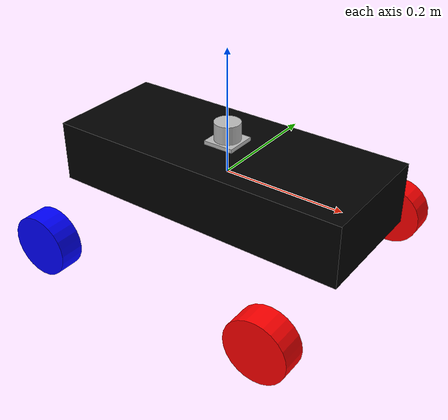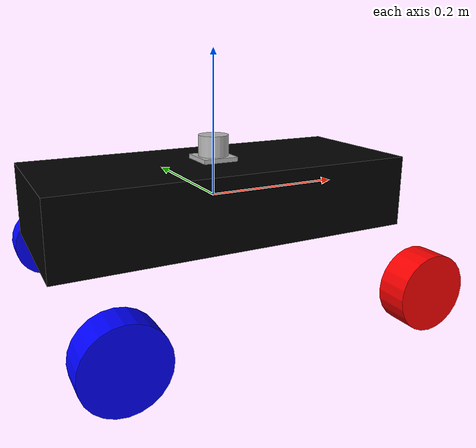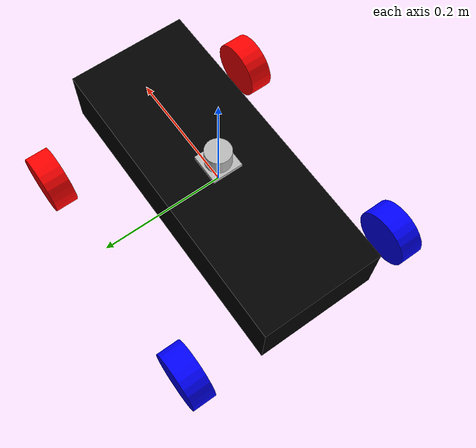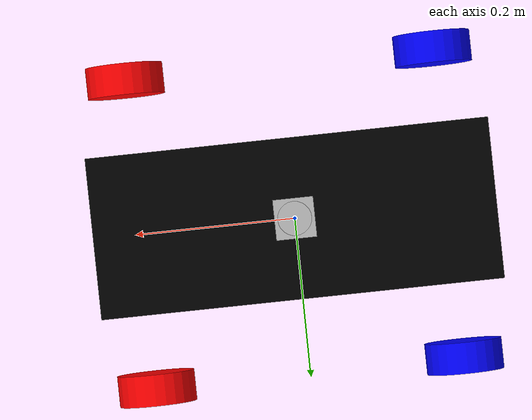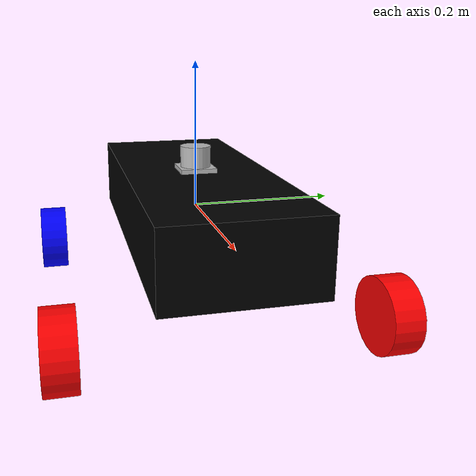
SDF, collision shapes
<?xml version="1.0"?>
<sdf version="1.6">
  <model name="mycar">
    <include>
      <pose>0 0 0.05 0 0 0</pose>
      <uri>model://hokuyo_gpu</uri>
    </include>
    <joint name="hokuyo_joint" type="fixed">
      <parent>chasis</parent>
      <child>hokuyo_gpu::link</child>
    </joint>
    <link name="chasis">
      <inertial>
        <mass>1.0</mass>
        <inertia>
          <!-- inertias are tricky to compute -->
          <!-- http://gazebosim.org/tutorials?tut=inertia&cat=build_robot -->
          <ixx>0.1</ixx>
          <!-- for a box: ixx = 0.083 * mass * (y*y + z*z) -->
          <ixy>0</ixy>
          <!-- for a box: ixy = 0 -->
          <ixz>0</ixz>
          <!-- for a box: ixz = 0 -->
          <iyy>0.1</iyy>
          <!-- for a box: iyy = 0.083 * mass * (x*x + z*z) -->
          <iyz>0</iyz>
          <!-- for a box: iyz = 0 -->
          <izz>0.1</izz>
          <!-- for a box: izz = 0.083 * mass * (x*x + y*y) -->
        </inertia>
      </inertial>
      <collision name="collision">
        <geometry>
          <box>
            <size>0.5 0.2 0.1</size>
          </box>
        </geometry>
      </collision>
      <visual name="visual">
        <material>
          <ambient>0 0 0</ambient>
        </material>
        <geometry>
          <box>
            <size>0.5 0.2 0.1</size>
          </box>
        </geometry>
      </visual>
    </link>
    <link name="front_left_wheel">
      <pose>0.2 0.2 -0.1 1.57 0 0</pose>
      <inertial>
        <mass>0.1</mass>
        <inertia>
          <!-- inertias are tricky to compute -->
          <!-- http://gazebosim.org/tutorials?tut=inertia&cat=build_robot -->
          <ixx>0.01</ixx>
          <!-- for a box: ixx = 0.083 * mass * (y*y + z*z) -->
          <ixy>0</ixy>
          <!-- for a box: ixy = 0 -->
          <ixz>0</ixz>
          <!-- for a box: ixz = 0 -->
          <iyy>0.01</iyy>
          <!-- for a box: iyy = 0.083 * mass * (x*x + z*z) -->
          <iyz>0</iyz>
          <!-- for a box: iyz = 0 -->
          <izz>0.1</izz>
          <!-- for a box: izz = 0.083 * mass * (x*x + y*y) -->
        </inertia>
      </inertial>
      <collision name="collision">
        <geometry>
          <cylinder>
            <radius>0.05</radius>
            <length>0.04</length>
          </cylinder>
        </geometry>
      </collision>
      <visual name="visual">
        <material>
          <ambient>1 0 0</ambient>
        </material>
        <geometry>
          <cylinder>
            <radius>0.05</radius>
            <length>0.04</length>
          </cylinder>
        </geometry>
      </visual>
    </link>
    <joint name="front_left_axle" type="revolute2">
      <parent>chasis</parent>
      <child>front_left_wheel</child>
      <axis>
        <limit>
          <lower>-0.2</lower>
          <upper>0.2</upper>
        </limit>
        <xyz>0 0 1</xyz>
      </axis>
      <axis2>
        <xyz>0 1 0</xyz>
      </axis2>
    </joint>
    <link name="front_right_wheel">
      <pose>0.2 -0.2 -0.1 1.57 0 0</pose>
      <inertial>
        <mass>0.1</mass>
        <inertia>
          <!-- inertias are tricky to compute -->
          <!-- http://gazebosim.org/tutorials?tut=inertia&cat=build_robot -->
          <ixx>0.01</ixx>
          <!-- for a box: ixx = 0.083 * mass * (y*y + z*z) -->
          <ixy>0</ixy>
          <!-- for a box: ixy = 0 -->
          <ixz>0</ixz>
          <!-- for a box: ixz = 0 -->
          <iyy>0.01</iyy>
          <!-- for a box: iyy = 0.083 * mass * (x*x + z*z) -->
          <iyz>0</iyz>
          <!-- for a box: iyz = 0 -->
          <izz>0.1</izz>
          <!-- for a box: izz = 0.083 * mass * (x*x + y*y) -->
        </inertia>
      </inertial>
      <collision name="collision">
        <geometry>
          <cylinder>
            <radius>0.05</radius>
            <length>0.04</length>
          </cylinder>
        </geometry>
      </collision>
      <visual name="visual">
        <material>
          <ambient>1 0 0</ambient>
        </material>
        <geometry>
          <cylinder>
            <radius>0.05</radius>
            <length>0.04</length>
          </cylinder>
        </geometry>
      </visual>
    </link>
    <joint name="front_right_axle" type="revolute2">
      <parent>chasis</parent>
      <child>front_right_wheel</child>
      <axis>
        <limit>
          <lower>-0.2</lower>
          <upper>0.2</upper>
        </limit>
        <xyz>0 0 1</xyz>
      </axis>
      <axis2>
        <xyz>0 1 0</xyz>
      </axis2>
    </joint>
    <link name="rear_left_wheel">
      <pose>-0.2 0.2 -0.1 1.57 0 0</pose>
      <inertial>
        <mass>0.1</mass>
        <inertia>
          <!-- inertias are tricky to compute -->
          <!-- http://gazebosim.org/tutorials?tut=inertia&cat=build_robot -->
          <ixx>0.01</ixx>
          <!-- for a box: ixx = 0.083 * mass * (y*y + z*z) -->
          <ixy>0</ixy>
          <!-- for a box: ixy = 0 -->
          <ixz>0</ixz>
          <!-- for a box: ixz = 0 -->
          <iyy>0.01</iyy>
          <!-- for a box: iyy = 0.083 * mass * (x*x + z*z) -->
          <iyz>0</iyz>
          <!-- for a box: iyz = 0 -->
          <izz>0.1</izz>
          <!-- for a box: izz = 0.083 * mass * (x*x + y*y) -->
        </inertia>
      </inertial>
      <collision name="collision">
        <geometry>
          <cylinder>
            <radius>0.05</radius>
            <length>0.04</length>
          </cylinder>
        </geometry>
      </collision>
      <visual name="visual">
        <material>
          <ambient>0 0 1</ambient>
        </material>
        <geometry>
          <cylinder>
            <radius>0.05</radius>
            <length>0.04</length>
          </cylinder>
        </geometry>
      </visual>
    </link>
    <joint name="rear_left_axle" type="revolute">
      <parent>chasis</parent>
      <child>rear_left_wheel</child>
      <axis>
        <xyz>0 0 1</xyz>
      </axis>
    </joint>
    <link name="rear_right_wheel">
      <pose>-0.2 -0.2 -0.1 1.57 0 0</pose>
      <inertial>
        <mass>0.1</mass>
        <inertia>
          <!-- inertias are tricky to compute -->
          <!-- http://gazebosim.org/tutorials?tut=inertia&cat=build_robot -->
          <ixx>0.01</ixx>
          <!-- for a box: ixx = 0.083 * mass * (y*y + z*z) -->
          <ixy>0</ixy>
          <!-- for a box: ixy = 0 -->
          <ixz>0</ixz>
          <!-- for a box: ixz = 0 -->
          <iyy>0.01</iyy>
          <!-- for a box: iyy = 0.083 * mass * (x*x + z*z) -->
          <iyz>0</iyz>
          <!-- for a box: iyz = 0 -->
          <izz>0.1</izz>
          <!-- for a box: izz = 0.083 * mass * (x*x + y*y) -->
        </inertia>
      </inertial>
      <collision name="collision">
        <geometry>
          <cylinder>
            <radius>0.05</radius>
            <length>0.04</length>
          </cylinder>
        </geometry>
      </collision>
      <visual name="visual">
        <material>
          <ambient>0 0 1</ambient>
        </material>
        <geometry>
          <cylinder>
            <radius>0.05</radius>
            <length>0.04</length>
          </cylinder>
        </geometry>
      </visual>
    </link>
    <joint name="rear_right_axle" type="revolute">
      <parent>chasis</parent>
      <child>rear_right_wheel</child>
      <axis>
        <xyz>0 0 1</xyz>
      </axis>
    </joint>
    <plugin name="p3d" filename="libgazebo_ros_p3d.so">
      <bodyName>chasis</bodyName>
      <topicName>mycar/ground_truth</topicName>
      <frameName>world</frameName>
      <updateRate>100</updateRate>
    </plugin>
    <plugin name="force_front_left" filename="libgazebo_ros_force.so">
      <alwaysOn>true</alwaysOn>
      <update>100</update>
      <updateRate>100.0</updateRate>
      <bodyName>front_left_wheel</bodyName>
      <topicName>mycar/force_front_left</topicName>
    </plugin>

    <plugin name="force_front_right" filename="libgazebo_ros_force.so">
      <alwaysOn>true</alwaysOn>
      <update>100</update>
      <updateRate>100.0</updateRate>
      <bodyName>front_right_wheel</bodyName>
      <topicName>mycar/force_front_right</topicName>
    </plugin>

    <plugin name="force_rear_left" filename="libgazebo_ros_force.so">
      <alwaysOn>true</alwaysOn>
      <update>100</update>
      <updateRate>100.0</updateRate>
      <bodyName>rear_left_wheel</bodyName>
      <topicName>mycar/force_rear_left</topicName>
    </plugin>

    <plugin name="force_rear_right" filename="libgazebo_ros_force.so">
      <alwaysOn>true</alwaysOn>
      <update>100</update>
      <updateRate>100.0</updateRate>
      <bodyName>front_right_wheel</bodyName>
      <topicName>mycar/force_rear_right</topicName>
    </plugin>

  </model>
</sdf>
<!-- vim: set et ft=xml fenc=utf-8 ff=unix sts=0 sw=2 ts=2 : -->

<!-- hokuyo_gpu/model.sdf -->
<sdf version="1.5">
  <model name="hokuyo_gpu">
    <pose>0 0 0.035 0 0 0</pose>
    <link name="link">
      <inertial>
        <mass>0.1</mass>
      </inertial>
      <visual name="visual">
        <geometry>
          <mesh>
            <uri>model://hokuyo_gpu/meshes/hokuyo.dae</uri>
          </mesh>
        </geometry>
      </visual>
      <collision name="collision-base">
        <pose>0 0 -0.0145 0 0 0</pose>
        <geometry>
          <box>
            <size>0.05 0.05 0.041</size>
          </box>
        </geometry>
      </collision>
      <collision name="collision-top">
        <pose>0 0 0.0205 0 0 0</pose>
        <geometry>
          <cylinder>
            <radius>0.021</radius>
            <length>0.029</length>
          </cylinder>
        </geometry>
      </collision>
      <sensor name="laser" type="gpu_ray">
        <pose>0.01 0 0.0175 0 -0 0</pose>
        <ray>
          <scan>
            <horizontal>
              <samples>640</samples>
              <resolution>1</resolution>
              <min_angle>-2.26889</min_angle>
              <max_angle>2.268899</max_angle>
            </horizontal>
          </scan>
          <range>
            <min>0.08</min>
            <max>10</max>
            <resolution>0.01</resolution>
          </range>
        </ray>
        <plugin name="laser" filename="libGpuRayPlugin.so" />
        <plugin name="gazebo_ros_head_hokuyo_controller" filename="libgazebo_ros_gpu_laser.so">
          <topicName>/mycar/laser/scan</topicName>
          <frameName>hokuyo_link</frameName>
        </plugin>
        <always_on>1</always_on>
        <update_rate>30</update_rate>
        <visualize>true</visualize>
      </sensor>
    </link>
  </model>
</sdf>
